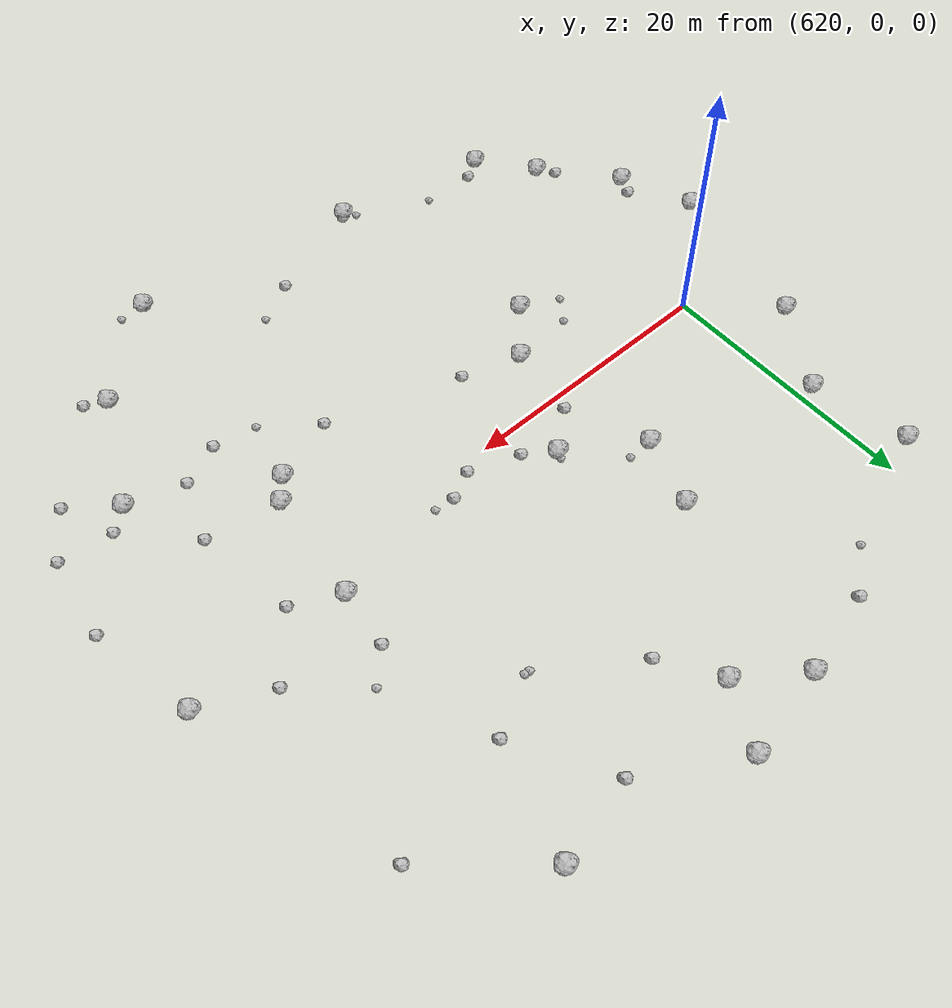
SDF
<sdf version="1.6">
 <world name="default">
  <include><uri>model://sun</uri></include>
  <model name="rock1_16_3">
   <include><uri>model://rock1</uri><pose>650.6819988147842 -27.029362917347648 0.5 0 0 0</pose></include>
  </model>
  <model name="rock1_16_4">
   <include><uri>model://rock1</uri><pose>632.6419979839682 -4.486955561703901 0.5 0 0 0</pose></include>
  </model>
  <model name="rock1_16_5">
   <include><uri>model://rock1</uri><pose>640.2777259139585 23.097635653684293 0.5 0 0 0</pose></include>
  </model>
  <model name="rock1_16_6">
   <include><uri>model://rock1</uri><pose>621.6328014415915 -22.19341731409548 0.5 0 0 0</pose></include>
  </model>
  <model name="rock1_16_7">
   <include><uri>model://rock1</uri><pose>618.768970256566 11.571862753024362 0.5 0 0 0</pose></include>
  </model>
  <model name="rock1_16_8">
   <include><uri>model://rock1</uri><pose>635.8830921743448 26.315084372332755 0.5 0 0 0</pose></include>
  </model>
  <model name="rock1_16_9">
   <include><uri>model://rock1</uri><pose>614.5773700302002 5.374773458679435 0.5 0 0 0</pose></include>
  </model>
  <model name="rock1_16_10">
   <include><uri>model://rock1</uri><pose>618.5057285605029 -18.104277643634514 0.5 0 0 0</pose></include>
  </model>
  <model name="rock1_16_11">
   <include><uri>model://rock1</uri><pose>654.2929774580566 2.6241909118944236 0.5 0 0 0</pose></include>
  </model>
  <model name="rock1_16_12">
   <include><uri>model://rock1</uri><pose>632.8288872345507 12.390771707932537 0.5 0 0 0</pose></include>
  </model>
  <model name="rock1_16_13">
   <include><uri>model://rock1</uri><pose>636.432657358264 3.5726002202749427 0.5 0 0 0</pose></include>
  </model>
  <model name="rock1_16_14">
   <include><uri>model://rock1</uri><pose>617.2995782194255 18.952978676029915 0.5 0 0 0</pose></include>
  </model>
  <model name="rock1_16_15">
   <include><uri>model://rock1</uri><pose>642.5879647622938 27.56935351990562 0.5 0 0 0</pose></include>
  </model>
  <model name="rock1_16_16">
   <include><uri>model://rock1</uri><pose>631.0328539922288 7.239138955750718 0.5 0 0 0</pose></include>
  </model>
  <model name="rock1_16_17">
   <include><uri>model://rock1</uri><pose>629.522910007093 -7.988196055603826 0.5 0 0 0</pose></include>
  </model>
  <model name="rock1_16_18">
   <include><uri>model://rock1</uri><pose>633.4557573398814 -24.61989726941725 0.5 0 0 0</pose></include>
  </model>
  <model name="rock1_16_19">
   <include><uri>model://rock1</uri><pose>614.0894467891487 -12.697106088312395 0.5 0 0 0</pose></include>
  </model>
  <model name="rock1_16_20">
   <include><uri>model://rock1</uri><pose>666.4168312192124 2.689278699229824 0.5 0 0 0</pose></include>
  </model>
  <model name="rock1_16_21">
   <include><uri>model://rock1</uri><pose>661.4543465856945 -12.65909195373633 0.5 0 0 0</pose></include>
  </model>
  <model name="rock1_16_22">
   <include><uri>model://rock1</uri><pose>653.3174691659998 -5.8334755029904315 0.5 0 0 0</pose></include>
  </model>
  <model name="rock1_16_23">
   <include><uri>model://rock1</uri><pose>657.4933681621552 -20.962624149296758 0.5 0 0 0</pose></include>
  </model>
  <model name="rock1_16_24">
   <include><uri>model://rock1</uri><pose>611.8741157486272 -7.02230708381251 0.5 0 0 0</pose></include>
  </model>
  <model name="rock1_16_25">
   <include><uri>model://rock1</uri><pose>655.6794655133921 24.733971343963574 0.5 0 0 0</pose></include>
  </model>
  <model name="rock1_16_26">
   <include><uri>model://rock1</uri><pose>651.9704730028483 -7.459138120165754 0.5 0 0 0</pose></include>
  </model>
  <model name="rock2_16_0">
   <include><uri>model://rock2</uri><pose>658.8625584535037 -6.768632086612257 0.3 0 0 0</pose></include>
  </model>
  <model name="rock2_16_1">
   <include><uri>model://rock2</uri><pose>654.844601456746 7.022249201549343 0.3 0 0 0</pose></include>
  </model>
  <model name="rock2_16_2">
   <include><uri>model://rock2</uri><pose>654.1395869190875 -12.674183267553914 0.3 0 0 0</pose></include>
  </model>
  <model name="rock2_16_3">
   <include><uri>model://rock2</uri><pose>614.7263658703629 -11.23098099362991 0.3 0 0 0</pose></include>
  </model>
  <model name="rock2_16_4">
   <include><uri>model://rock2</uri><pose>641.4915427908032 -21.45793672726981 0.3 0 0 0</pose></include>
  </model>
  <model name="rock2_16_5">
   <include><uri>model://rock2</uri><pose>667.0879515303574 -11.761737262038451 0.3 0 0 0</pose></include>
  </model>
  <model name="rock2_16_6">
   <include><uri>model://rock2</uri><pose>638.4918405253891 2.1005709549705074 0.3 0 0 0</pose></include>
  </model>
  <model name="rock2_16_7">
   <include><uri>model://rock2</uri><pose>644.3444254617275 1.7475685250765771 0.3 0 0 0</pose></include>
  </model>
  <model name="rock2_16_8">
   <include><uri>model://rock2</uri><pose>664.7623517986394 -15.258938807381712 0.3 0 0 0</pose></include>
  </model>
  <model name="rock2_16_9">
   <include><uri>model://rock2</uri><pose>633.7346325185567 -24.285136616799164 0.3 0 0 0</pose></include>
  </model>
  <model name="rock2_16_10">
   <include><uri>model://rock2</uri><pose>637.1030122043325 -5.826476814988439 0.3 0 0 0</pose></include>
  </model>
  <model name="rock2_16_11">
   <include><uri>model://rock2</uri><pose>623.2251207075755 -21.17425869968813 0.3 0 0 0</pose></include>
  </model>
  <model name="rock2_16_12">
   <include><uri>model://rock2</uri><pose>662.6418087469233 18.544451055453557 0.3 0 0 0</pose></include>
  </model>
  <model name="rock2_16_13">
   <include><uri>model://rock2</uri><pose>661.3992368151908 5.145914270936565 0.3 0 0 0</pose></include>
  </model>
  <model name="rock2_16_14">
   <include><uri>model://rock2</uri><pose>649.5070842426435 23.413585453206707 0.3 0 0 0</pose></include>
  </model>
  <model name="rock2_16_15">
   <include><uri>model://rock2</uri><pose>663.1138927873249 -11.276546847911643 0.3 0 0 0</pose></include>
  </model>
  <model name="rock2_16_16">
   <include><uri>model://rock2</uri><pose>642.7722298990078 19.023621732291446 0.3 0 0 0</pose></include>
  </model>
  <model name="rock2_16_17">
   <include><uri>model://rock2</uri><pose>629.6313228755027 24.84988410411831 0.3 0 0 0</pose></include>
  </model>
  <model name="rock2_16_18">
   <include><uri>model://rock2</uri><pose>657.7569038687877 0.8771948173983297 0.3 0 0 0</pose></include>
  </model>
  <model name="rock2_16_19">
   <include><uri>model://rock2</uri><pose>659.0772493371835 -21.740529060143594 0.3 0 0 0</pose></include>
  </model>
  <model name="rock2_16_20">
   <include><uri>model://rock2</uri><pose>617.5783726419002 -16.780482524557247 0.3 0 0 0</pose></include>
  </model>
  <model name="rock2_16_21">
   <include><uri>model://rock2</uri><pose>653.4407555183486 16.651928073064866 0.3 0 0 0</pose></include>
  </model>
  <model name="rock2_16_22">
   <include><uri>model://rock2</uri><pose>642.2494476392867 0.7216628912615839 0.3 0 0 0</pose></include>
  </model>
  <model name="rock2_16_23">
   <include><uri>model://rock2</uri><pose>647.1521887556634 -9.108777617097576 0.3 0 0 0</pose></include>
  </model>
  <model name="rock2_16_24">
   <include><uri>model://rock2</uri><pose>667.9883295781765 -5.480118892166455 0.3 0 0 0</pose></include>
  </model>
  <model name="rock2_16_25">
   <include><uri>model://rock2</uri><pose>633.5136739757668 1.1996449338149588 0.3 0 0 0</pose></include>
  </model>
  <model name="rock2_16_26">
   <include><uri>model://rock2</uri><pose>657.2191114559123 -11.310866119199016 0.3 0 0 0</pose></include>
  </model>
  <model name="rock3_16_0">
   <include><uri>model://rock3</uri><pose>627.2970239108452 -21.3009690544565 0.2 0 0 0</pose></include>
  </model>
  <model name="rock3_16_1">
   <include><uri>model://rock3</uri><pose>644.5271812610373 -19.781962180573522 0.2 0 0 0</pose></include>
  </model>
  <model name="rock3_16_2">
   <include><uri>model://rock3</uri><pose>645.8499461695308 1.5758318404263534 0.2 0 0 0</pose></include>
  </model>
  <model name="rock3_16_3">
   <include><uri>model://rock3</uri><pose>650.868487591277 -12.137981694751744 0.2 0 0 0</pose></include>
  </model>
  <model name="rock3_16_4">
   <include><uri>model://rock3</uri><pose>649.418372852753 14.462928861675238 0.2 0 0 0</pose></include>
  </model>
  <model name="rock3_16_5">
   <include><uri>model://rock3</uri><pose>632.9283453387944 7.263679332613478 0.2 0 0 0</pose></include>
  </model>
  <model name="rock3_16_6">
   <include><uri>model://rock3</uri><pose>626.6086623584205 -6.627158139172 0.2 0 0 0</pose></include>
  </model>
  <model name="rock3_16_7">
   <include><uri>model://rock3</uri><pose>636.5984434358298 4.100660073292893 0.2 0 0 0</pose></include>
  </model>
  <model name="rock3_16_8">
   <include><uri>model://rock3</uri><pose>652.6186272096434 -26.97012632943021 0.2 0 0 0</pose></include>
  </model>
  <model name="rock3_16_9">
   <include><uri>model://rock3</uri><pose>627.891360575777 -4.861334914319748 0.2 0 0 0</pose></include>
  </model>
  <model name="rock3_16_10">
   <include><uri>model://rock3</uri><pose>649.0549325557963 14.491817124566175 0.2 0 0 0</pose></include>
  </model>
  <model name="rock3_16_11">
   <include><uri>model://rock3</uri><pose>626.478188797987 22.392769751108368 0.2 0 0 0</pose></include>
  </model>
  <model name="rock3_16_12">
   <include><uri>model://rock3</uri><pose>632.7035632566696 -23.911234377658992 0.2 0 0 0</pose></include>
  </model>
  <model name="rock3_16_13">
   <include><uri>model://rock3</uri><pose>656.9018604061755 9.074025416671006 0.2 0 0 0</pose></include>
  </model>
 </world>
</sdf>
